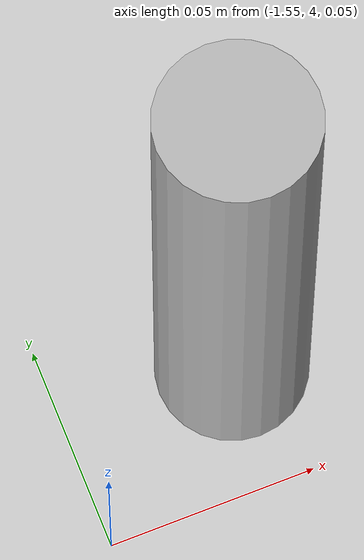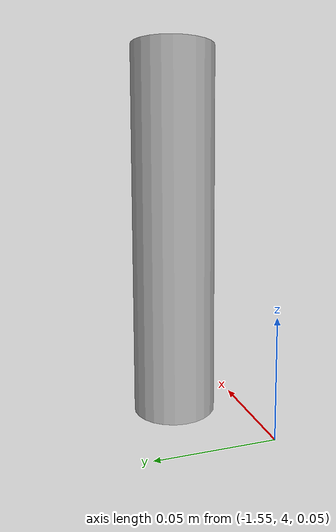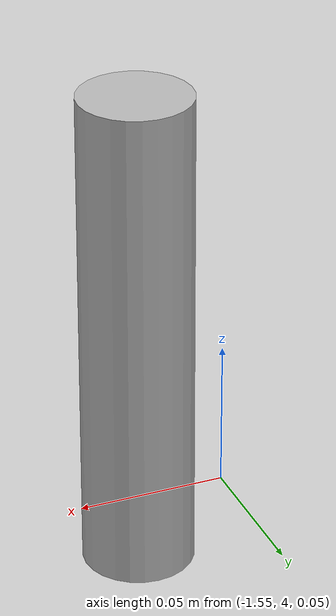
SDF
<?xml version='1.0'?>
<sdf version='1.4'>
  <model name='small_beer'>
    <link name='link'>
      <pose>0 0 0.080 0 0 0</pose>
      <inertial>
        <mass>0.010</mass>
        <inertia>
          <ixx>1.1072e-004</ixx>
          <ixy>0</ixy>
          <ixz>0</ixz>
          <iyy>1.1072e-004</iyy>
          <iyz>0</iyz>
          <izz>8.1000e-006</izz>
        </inertia>
      </inertial>
      <collision name='collision'>
        <geometry>
          <cylinder>
            <radius>0.018000</radius>
            <length>0.160000</length>
          </cylinder>
        </geometry>
        <surface>
          <friction>
            <ode>
              <mu>1000000.0</mu>
              <mu2>10000.0</mu2>
            </ode>
          </friction>
          <contact>
            <ode>
              <kp>1000000.0</kp>
              <kd>100.0</kd>
              <max_vel>1.0</max_vel>
              <min_depth>0.002</min_depth>
            </ode>
          </contact>
        </surface>
      </collision>
      <visual name='visual'>
        <geometry>
          <cylinder>
            <radius>0.018000</radius>
            <length>0.160000</length>
          </cylinder>
        </geometry>
        <material>
          <script>
            <uri>model://small_beer/materials/scripts</uri>
            <uri>model://small_beer/materials/textures</uri>
            <name>Beer/Diffuse</name>
          </script>
        </material>
      </visual>
    </link>
    <pose frame=''>-1.50831 4.03 0.05 0 -0 0</pose>
  </model>
</sdf>
